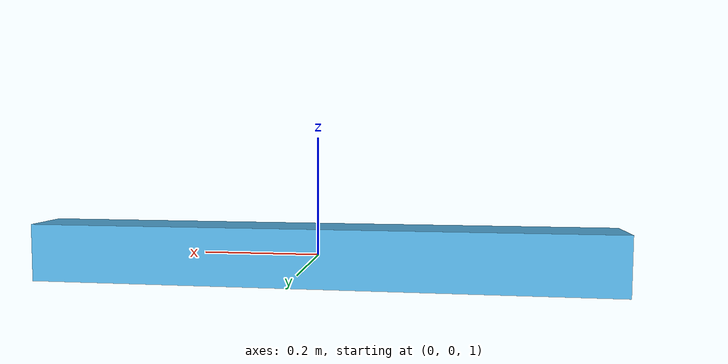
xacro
<?xml version="1.0"?>
<robot name="simple_bot" xmlns:xacro="http://www.ros.org/wiki/xacro">

  <link name="world"/>

  <link name="simple_bot">
    <visual>
      <geometry>
        <box size="1 0.1 0.1"/>
      </geometry>
    </visual>
  </link>

  <joint name="joint" type="revolute">
    <parent link="world"/>
    <child link="simple_bot"/>
    <axis xyz="0 0 1"/>
    <origin xyz="0 0 1"/>
    <limit lower="-6.3" upper="6.3" effort="10" velocity="2"/>
  </joint>

</robot>
